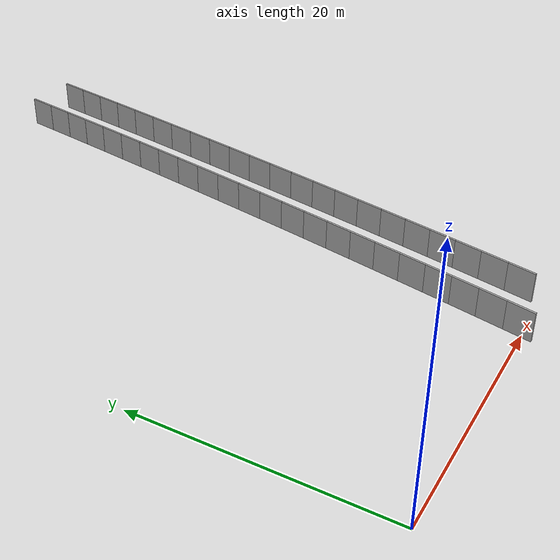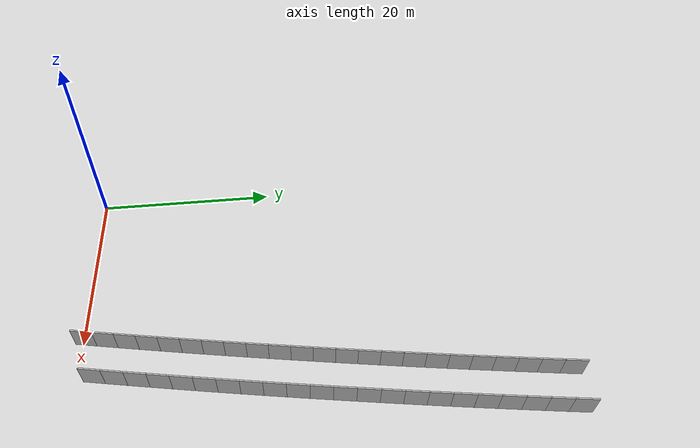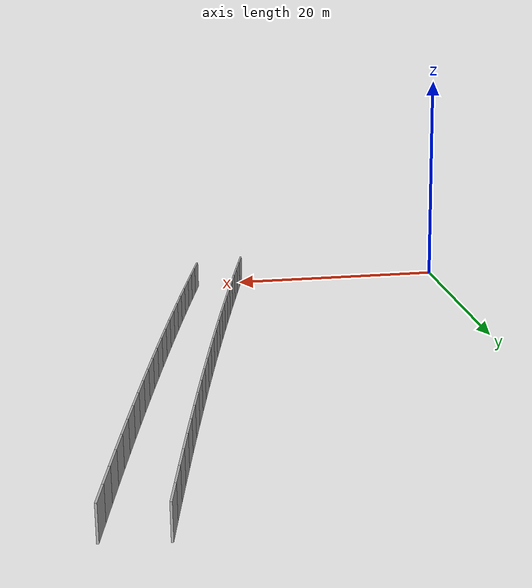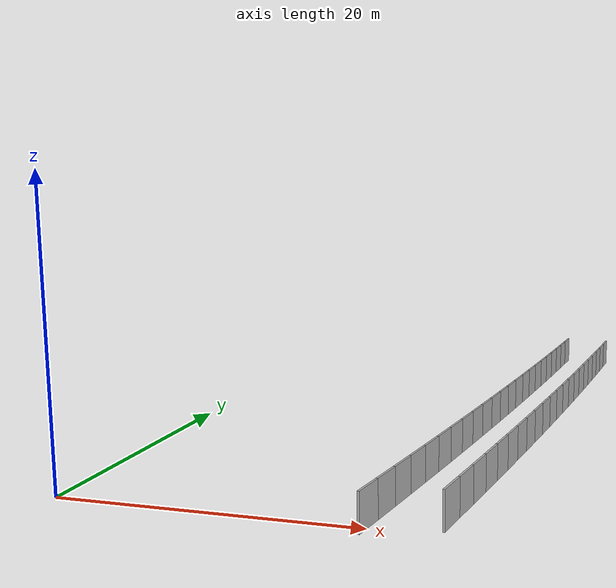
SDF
<?xml version="1.0" ?>
<sdf version="1.6">
  <model name="sps_4621">
    <pose frame="">0 0 0 0 -0 0</pose>
    <static>1</static>
    <self_collide>0</self_collide>
    <allow_auto_disable>0</allow_auto_disable>
    <link name="Wall4465">
      <kinematic>0</kinematic>
      <gravity>1</gravity>
      <self_collide>0</self_collide>
      <collision name="collision">
        <geometry>
          <box>
            <size>2.25437 0.15 2.5</size>
          </box>
        </geometry>
        <pose frame="">0 0 0 0 -0 0</pose>
      </collision>
      <visual name="visual">
        <geometry>
          <box>
            <size>2.25437 0.15 2.5</size>
          </box>
        </geometry>
        <pose frame="">0 0 0 0 -0 0</pose>
        <cast_shadows>1</cast_shadows>
        <transparency>0.0</transparency>
      </visual>
      <pose frame="">24.4517 1.71648 1.25 0 -0 1.37571</pose>
    </link>
    <link name="Wall4466">
      <kinematic>0</kinematic>
      <gravity>1</gravity>
      <self_collide>0</self_collide>
      <collision name="collision">
        <geometry>
          <box>
            <size>2.25475 0.15 2.5</size>
          </box>
        </geometry>
        <pose frame="">0 0 0 0 -0 0</pose>
      </collision>
      <visual name="visual">
        <geometry>
          <box>
            <size>2.25475 0.15 2.5</size>
          </box>
        </geometry>
        <pose frame="">0 0 0 0 -0 0</pose>
        <cast_shadows>1</cast_shadows>
        <transparency>0.0</transparency>
      </visual>
      <pose frame="">24.8862 3.92879 1.25 0 -0 1.37809</pose>
    </link>
    <link name="Wall4467">
      <kinematic>0</kinematic>
      <gravity>1</gravity>
      <self_collide>0</self_collide>
      <collision name="collision">
        <geometry>
          <box>
            <size>2.25467 0.15 2.5</size>
          </box>
        </geometry>
        <pose frame="">0 0 0 0 -0 0</pose>
      </collision>
      <visual name="visual">
        <geometry>
          <box>
            <size>2.25467 0.15 2.5</size>
          </box>
        </geometry>
        <pose frame="">0 0 0 0 -0 0</pose>
        <cast_shadows>1</cast_shadows>
        <transparency>0.0</transparency>
      </visual>
      <pose frame="">25.3153 6.14229 1.25 0 -0 1.38054</pose>
    </link>
    <link name="Wall4468">
      <kinematic>0</kinematic>
      <gravity>1</gravity>
      <self_collide>0</self_collide>
      <collision name="collision">
        <geometry>
          <box>
            <size>2.25451 0.15 2.5</size>
          </box>
        </geometry>
        <pose frame="">0 0 0 0 -0 0</pose>
      </collision>
      <visual name="visual">
        <geometry>
          <box>
            <size>2.25451 0.15 2.5</size>
          </box>
        </geometry>
        <pose frame="">0 0 0 0 -0 0</pose>
        <cast_shadows>1</cast_shadows>
        <transparency>0.0</transparency>
      </visual>
      <pose frame="">25.7392 8.35667 1.25 0 -0 1.38278</pose>
    </link>
    <link name="Wall4469">
      <kinematic>0</kinematic>
      <gravity>1</gravity>
      <self_collide>0</self_collide>
      <collision name="collision">
        <geometry>
          <box>
            <size>2.25502 0.15 2.5</size>
          </box>
        </geometry>
        <pose frame="">0 0 0 0 -0 0</pose>
      </collision>
      <visual name="visual">
        <geometry>
          <box>
            <size>2.25502 0.15 2.5</size>
          </box>
        </geometry>
        <pose frame="">0 0 0 0 -0 0</pose>
        <cast_shadows>1</cast_shadows>
        <transparency>0.0</transparency>
      </visual>
      <pose frame="">26.158 10.5722 1.25 0 -0 1.38508</pose>
    </link>
    <link name="Wall4470">
      <kinematic>0</kinematic>
      <gravity>1</gravity>
      <self_collide>0</self_collide>
      <collision name="collision">
        <geometry>
          <box>
            <size>2.25472 0.15 2.5</size>
          </box>
        </geometry>
        <pose frame="">0 0 0 0 -0 0</pose>
      </collision>
      <visual name="visual">
        <geometry>
          <box>
            <size>2.25472 0.15 2.5</size>
          </box>
        </geometry>
        <pose frame="">0 0 0 0 -0 0</pose>
        <cast_shadows>1</cast_shadows>
        <transparency>0.0</transparency>
      </visual>
      <pose frame="">26.5716 12.7888 1.25 0 -0 1.38757</pose>
    </link>
    <link name="Wall4471">
      <kinematic>0</kinematic>
      <gravity>1</gravity>
      <self_collide>0</self_collide>
      <collision name="collision">
        <geometry>
          <box>
            <size>2.25452 0.15 2.5</size>
          </box>
        </geometry>
        <pose frame="">0 0 0 0 -0 0</pose>
      </collision>
      <visual name="visual">
        <geometry>
          <box>
            <size>2.25452 0.15 2.5</size>
          </box>
        </geometry>
        <pose frame="">0 0 0 0 -0 0</pose>
        <cast_shadows>1</cast_shadows>
        <transparency>0.0</transparency>
      </visual>
      <pose frame="">26.9798 15.0062 1.25 0 -0 1.39</pose>
    </link>
    <link name="Wall4472">
      <kinematic>0</kinematic>
      <gravity>1</gravity>
      <self_collide>0</self_collide>
      <collision name="collision">
        <geometry>
          <box>
            <size>2.25461 0.15 2.5</size>
          </box>
        </geometry>
        <pose frame="">0 0 0 0 -0 0</pose>
      </collision>
      <visual name="visual">
        <geometry>
          <box>
            <size>2.25461 0.15 2.5</size>
          </box>
        </geometry>
        <pose frame="">0 0 0 0 -0 0</pose>
        <cast_shadows>1</cast_shadows>
        <transparency>0.0</transparency>
      </visual>
      <pose frame="">27.3826 17.2245 1.25 0 -0 1.39234</pose>
    </link>
    <link name="Wall4473">
      <kinematic>0</kinematic>
      <gravity>1</gravity>
      <self_collide>0</self_collide>
      <collision name="collision">
        <geometry>
          <box>
            <size>2.25493 0.15 2.5</size>
          </box>
        </geometry>
        <pose frame="">0 0 0 0 -0 0</pose>
      </collision>
      <visual name="visual">
        <geometry>
          <box>
            <size>2.25493 0.15 2.5</size>
          </box>
        </geometry>
        <pose frame="">0 0 0 0 -0 0</pose>
        <cast_shadows>1</cast_shadows>
        <transparency>0.0</transparency>
      </visual>
      <pose frame="">27.7803 19.4439 1.25 0 -0 1.39463</pose>
    </link>
    <link name="Wall4474">
      <kinematic>0</kinematic>
      <gravity>1</gravity>
      <self_collide>0</self_collide>
      <collision name="collision">
        <geometry>
          <box>
            <size>2.25435 0.15 2.5</size>
          </box>
        </geometry>
        <pose frame="">0 0 0 0 -0 0</pose>
      </collision>
      <visual name="visual">
        <geometry>
          <box>
            <size>2.25435 0.15 2.5</size>
          </box>
        </geometry>
        <pose frame="">0 0 0 0 -0 0</pose>
        <cast_shadows>1</cast_shadows>
        <transparency>0.0</transparency>
      </visual>
      <pose frame="">28.1728 21.6641 1.25 0 -0 1.39703</pose>
    </link>
    <link name="Wall4475">
      <kinematic>0</kinematic>
      <gravity>1</gravity>
      <self_collide>0</self_collide>
      <collision name="collision">
        <geometry>
          <box>
            <size>2.25454 0.15 2.5</size>
          </box>
        </geometry>
        <pose frame="">0 0 0 0 -0 0</pose>
      </collision>
      <visual name="visual">
        <geometry>
          <box>
            <size>2.25454 0.15 2.5</size>
          </box>
        </geometry>
        <pose frame="">0 0 0 0 -0 0</pose>
        <cast_shadows>1</cast_shadows>
        <transparency>0.0</transparency>
      </visual>
      <pose frame="">28.5597 23.8851 1.25 0 -0 1.39954</pose>
    </link>
    <link name="Wall4476">
      <kinematic>0</kinematic>
      <gravity>1</gravity>
      <self_collide>0</self_collide>
      <collision name="collision">
        <geometry>
          <box>
            <size>2.25477 0.15 2.5</size>
          </box>
        </geometry>
        <pose frame="">0 0 0 0 -0 0</pose>
      </collision>
      <visual name="visual">
        <geometry>
          <box>
            <size>2.25477 0.15 2.5</size>
          </box>
        </geometry>
        <pose frame="">0 0 0 0 -0 0</pose>
        <cast_shadows>1</cast_shadows>
        <transparency>0.0</transparency>
      </visual>
      <pose frame="">28.9415 26.1072 1.25 0 -0 1.40181</pose>
    </link>
    <link name="Wall4477">
      <kinematic>0</kinematic>
      <gravity>1</gravity>
      <self_collide>0</self_collide>
      <collision name="collision">
        <geometry>
          <box>
            <size>2.25459 0.15 2.5</size>
          </box>
        </geometry>
        <pose frame="">0 0 0 0 -0 0</pose>
      </collision>
      <visual name="visual">
        <geometry>
          <box>
            <size>2.25459 0.15 2.5</size>
          </box>
        </geometry>
        <pose frame="">0 0 0 0 -0 0</pose>
        <cast_shadows>1</cast_shadows>
        <transparency>0.0</transparency>
      </visual>
      <pose frame="">29.318 28.3302 1.25 0 -0 1.40424</pose>
    </link>
    <link name="Wall4478">
      <kinematic>0</kinematic>
      <gravity>1</gravity>
      <self_collide>0</self_collide>
      <collision name="collision">
        <geometry>
          <box>
            <size>2.2547 0.15 2.5</size>
          </box>
        </geometry>
        <pose frame="">0 0 0 0 -0 0</pose>
      </collision>
      <visual name="visual">
        <geometry>
          <box>
            <size>2.2547 0.15 2.5</size>
          </box>
        </geometry>
        <pose frame="">0 0 0 0 -0 0</pose>
        <cast_shadows>1</cast_shadows>
        <transparency>0.0</transparency>
      </visual>
      <pose frame="">29.6891 30.5541 1.25 0 -0 1.40658</pose>
    </link>
    <link name="Wall4479">
      <kinematic>0</kinematic>
      <gravity>1</gravity>
      <self_collide>0</self_collide>
      <collision name="collision">
        <geometry>
          <box>
            <size>2.2547 0.15 2.5</size>
          </box>
        </geometry>
        <pose frame="">0 0 0 0 -0 0</pose>
      </collision>
      <visual name="visual">
        <geometry>
          <box>
            <size>2.2547 0.15 2.5</size>
          </box>
        </geometry>
        <pose frame="">0 0 0 0 -0 0</pose>
        <cast_shadows>1</cast_shadows>
        <transparency>0.0</transparency>
      </visual>
      <pose frame="">30.0551 32.7789 1.25 0 -0 1.40891</pose>
    </link>
    <link name="Wall4480">
      <kinematic>0</kinematic>
      <gravity>1</gravity>
      <self_collide>0</self_collide>
      <collision name="collision">
        <geometry>
          <box>
            <size>2.25458 0.15 2.5</size>
          </box>
        </geometry>
        <pose frame="">0 0 0 0 -0 0</pose>
      </collision>
      <visual name="visual">
        <geometry>
          <box>
            <size>2.25458 0.15 2.5</size>
          </box>
        </geometry>
        <pose frame="">0 0 0 0 -0 0</pose>
        <cast_shadows>1</cast_shadows>
        <transparency>0.0</transparency>
      </visual>
      <pose frame="">30.4157 35.0045 1.25 0 -0 1.41143</pose>
    </link>
    <link name="Wall4481">
      <kinematic>0</kinematic>
      <gravity>1</gravity>
      <self_collide>0</self_collide>
      <collision name="collision">
        <geometry>
          <box>
            <size>2.25459 0.15 2.5</size>
          </box>
        </geometry>
        <pose frame="">0 0 0 0 -0 0</pose>
      </collision>
      <visual name="visual">
        <geometry>
          <box>
            <size>2.25459 0.15 2.5</size>
          </box>
        </geometry>
        <pose frame="">0 0 0 0 -0 0</pose>
        <cast_shadows>1</cast_shadows>
        <transparency>0.0</transparency>
      </visual>
      <pose frame="">30.771 37.2309 1.25 0 -0 1.41365</pose>
    </link>
    <link name="Wall4482">
      <kinematic>0</kinematic>
      <gravity>1</gravity>
      <self_collide>0</self_collide>
      <collision name="collision">
        <geometry>
          <box>
            <size>2.25453 0.15 2.5</size>
          </box>
        </geometry>
        <pose frame="">0 0 0 0 -0 0</pose>
      </collision>
      <visual name="visual">
        <geometry>
          <box>
            <size>2.25453 0.15 2.5</size>
          </box>
        </geometry>
        <pose frame="">0 0 0 0 -0 0</pose>
        <cast_shadows>1</cast_shadows>
        <transparency>0.0</transparency>
      </visual>
      <pose frame="">31.1212 39.4581 1.25 0 -0 1.41608</pose>
    </link>
    <link name="Wall4483">
      <kinematic>0</kinematic>
      <gravity>1</gravity>
      <self_collide>0</self_collide>
      <collision name="collision">
        <geometry>
          <box>
            <size>2.25487 0.15 2.5</size>
          </box>
        </geometry>
        <pose frame="">0 0 0 0 -0 0</pose>
      </collision>
      <visual name="visual">
        <geometry>
          <box>
            <size>2.25487 0.15 2.5</size>
          </box>
        </geometry>
        <pose frame="">0 0 0 0 -0 0</pose>
        <cast_shadows>1</cast_shadows>
        <transparency>0.0</transparency>
      </visual>
      <pose frame="">31.466 41.6863 1.25 0 -0 1.41846</pose>
    </link>
    <link name="Wall4484">
      <kinematic>0</kinematic>
      <gravity>1</gravity>
      <self_collide>0</self_collide>
      <collision name="collision">
        <geometry>
          <box>
            <size>2.25455 0.15 2.5</size>
          </box>
        </geometry>
        <pose frame="">0 0 0 0 -0 0</pose>
      </collision>
      <visual name="visual">
        <geometry>
          <box>
            <size>2.25455 0.15 2.5</size>
          </box>
        </geometry>
        <pose frame="">0 0 0 0 -0 0</pose>
        <cast_shadows>1</cast_shadows>
        <transparency>0.0</transparency>
      </visual>
      <pose frame="">31.8054 43.9153 1.25 0 -0 1.42085</pose>
    </link>
    <link name="Wall4485">
      <kinematic>0</kinematic>
      <gravity>1</gravity>
      <self_collide>0</self_collide>
      <collision name="collision">
        <geometry>
          <box>
            <size>2.25447 0.15 2.5</size>
          </box>
        </geometry>
        <pose frame="">0 0 0 0 -0 0</pose>
      </collision>
      <visual name="visual">
        <geometry>
          <box>
            <size>2.25447 0.15 2.5</size>
          </box>
        </geometry>
        <pose frame="">0 0 0 0 -0 0</pose>
        <cast_shadows>1</cast_shadows>
        <transparency>0.0</transparency>
      </visual>
      <pose frame="">32.1395 46.1449 1.25 0 -0 1.42326</pose>
    </link>
    <link name="Wall4486">
      <kinematic>0</kinematic>
      <gravity>1</gravity>
      <self_collide>0</self_collide>
      <collision name="collision">
        <geometry>
          <box>
            <size>2.25473 0.15 2.5</size>
          </box>
        </geometry>
        <pose frame="">0 0 0 0 -0 0</pose>
      </collision>
      <visual name="visual">
        <geometry>
          <box>
            <size>2.25473 0.15 2.5</size>
          </box>
        </geometry>
        <pose frame="">0 0 0 0 -0 0</pose>
        <cast_shadows>1</cast_shadows>
        <transparency>0.0</transparency>
      </visual>
      <pose frame="">32.4683 48.3754 1.25 0 -0 1.42563</pose>
    </link>
    <link name="Wall6189">
      <kinematic>0</kinematic>
      <gravity>1</gravity>
      <self_collide>0</self_collide>
      <collision name="collision">
        <geometry>
          <box>
            <size>2.24485 0.15 2.5</size>
          </box>
        </geometry>
        <pose frame="">0 0 0 0 -0 0</pose>
      </collision>
      <visual name="visual">
        <geometry>
          <box>
            <size>2.24485 0.15 2.5</size>
          </box>
        </geometry>
        <pose frame="">0 0 0 0 -0 0</pose>
        <cast_shadows>1</cast_shadows>
        <transparency>0.0</transparency>
      </visual>
      <pose frame="">19.9531 0.317489 1.25 0 -0 1.37335</pose>
    </link>
    <link name="Wall6190">
      <kinematic>0</kinematic>
      <gravity>1</gravity>
      <self_collide>0</self_collide>
      <collision name="collision">
        <geometry>
          <box>
            <size>2.24452 0.15 2.5</size>
          </box>
        </geometry>
        <pose frame="">0 0 0 0 -0 0</pose>
      </collision>
      <visual name="visual">
        <geometry>
          <box>
            <size>2.24452 0.15 2.5</size>
          </box>
        </geometry>
        <pose frame="">0 0 0 0 -0 0</pose>
        <cast_shadows>1</cast_shadows>
        <transparency>0.0</transparency>
      </visual>
      <pose frame="">20.3907 2.51909 1.25 0 -0 1.37576</pose>
    </link>
    <link name="Wall6191">
      <kinematic>0</kinematic>
      <gravity>1</gravity>
      <self_collide>0</self_collide>
      <collision name="collision">
        <geometry>
          <box>
            <size>2.24481 0.15 2.5</size>
          </box>
        </geometry>
        <pose frame="">0 0 0 0 -0 0</pose>
      </collision>
      <visual name="visual">
        <geometry>
          <box>
            <size>2.24481 0.15 2.5</size>
          </box>
        </geometry>
        <pose frame="">0 0 0 0 -0 0</pose>
        <cast_shadows>1</cast_shadows>
        <transparency>0.0</transparency>
      </visual>
      <pose frame="">20.8232 4.72169 1.25 0 -0 1.37806</pose>
    </link>
    <link name="Wall6192">
      <kinematic>0</kinematic>
      <gravity>1</gravity>
      <self_collide>0</self_collide>
      <collision name="collision">
        <geometry>
          <box>
            <size>2.24491 0.15 2.5</size>
          </box>
        </geometry>
        <pose frame="">0 0 0 0 -0 0</pose>
      </collision>
      <visual name="visual">
        <geometry>
          <box>
            <size>2.24491 0.15 2.5</size>
          </box>
        </geometry>
        <pose frame="">0 0 0 0 -0 0</pose>
        <cast_shadows>1</cast_shadows>
        <transparency>0.0</transparency>
      </visual>
      <pose frame="">21.2506 6.92549 1.25 0 -0 1.38042</pose>
    </link>
    <link name="Wall6193">
      <kinematic>0</kinematic>
      <gravity>1</gravity>
      <self_collide>0</self_collide>
      <collision name="collision">
        <geometry>
          <box>
            <size>2.24477 0.15 2.5</size>
          </box>
        </geometry>
        <pose frame="">0 0 0 0 -0 0</pose>
      </collision>
      <visual name="visual">
        <geometry>
          <box>
            <size>2.24477 0.15 2.5</size>
          </box>
        </geometry>
        <pose frame="">0 0 0 0 -0 0</pose>
        <cast_shadows>1</cast_shadows>
        <transparency>0.0</transparency>
      </visual>
      <pose frame="">21.6728 9.13026 1.25 0 -0 1.38276</pose>
    </link>
    <link name="Wall6194">
      <kinematic>0</kinematic>
      <gravity>1</gravity>
      <self_collide>0</self_collide>
      <collision name="collision">
        <geometry>
          <box>
            <size>2.24475 0.15 2.5</size>
          </box>
        </geometry>
        <pose frame="">0 0 0 0 -0 0</pose>
      </collision>
      <visual name="visual">
        <geometry>
          <box>
            <size>2.24475 0.15 2.5</size>
          </box>
        </geometry>
        <pose frame="">0 0 0 0 -0 0</pose>
        <cast_shadows>1</cast_shadows>
        <transparency>0.0</transparency>
      </visual>
      <pose frame="">22.0897 11.336 1.25 0 -0 1.3853</pose>
    </link>
    <link name="Wall6195">
      <kinematic>0</kinematic>
      <gravity>1</gravity>
      <self_collide>0</self_collide>
      <collision name="collision">
        <geometry>
          <box>
            <size>2.24482 0.15 2.5</size>
          </box>
        </geometry>
        <pose frame="">0 0 0 0 -0 0</pose>
      </collision>
      <visual name="visual">
        <geometry>
          <box>
            <size>2.24482 0.15 2.5</size>
          </box>
        </geometry>
        <pose frame="">0 0 0 0 -0 0</pose>
        <cast_shadows>1</cast_shadows>
        <transparency>0.0</transparency>
      </visual>
      <pose frame="">22.5012 13.5427 1.25 0 -0 1.38749</pose>
    </link>
    <link name="Wall6196">
      <kinematic>0</kinematic>
      <gravity>1</gravity>
      <self_collide>0</self_collide>
      <collision name="collision">
        <geometry>
          <box>
            <size>2.24496 0.15 2.5</size>
          </box>
        </geometry>
        <pose frame="">0 0 0 0 -0 0</pose>
      </collision>
      <visual name="visual">
        <geometry>
          <box>
            <size>2.24496 0.15 2.5</size>
          </box>
        </geometry>
        <pose frame="">0 0 0 0 -0 0</pose>
        <cast_shadows>1</cast_shadows>
        <transparency>0.0</transparency>
      </visual>
      <pose frame="">22.9076 15.7505 1.25 0 -0 1.39002</pose>
    </link>
    <link name="Wall6197">
      <kinematic>0</kinematic>
      <gravity>1</gravity>
      <self_collide>0</self_collide>
      <collision name="collision">
        <geometry>
          <box>
            <size>2.24462 0.15 2.5</size>
          </box>
        </geometry>
        <pose frame="">0 0 0 0 -0 0</pose>
      </collision>
      <visual name="visual">
        <geometry>
          <box>
            <size>2.24462 0.15 2.5</size>
          </box>
        </geometry>
        <pose frame="">0 0 0 0 -0 0</pose>
        <cast_shadows>1</cast_shadows>
        <transparency>0.0</transparency>
      </visual>
      <pose frame="">23.3086 17.9592 1.25 0 -0 1.39237</pose>
    </link>
    <link name="Wall6198">
      <kinematic>0</kinematic>
      <gravity>1</gravity>
      <self_collide>0</self_collide>
      <collision name="collision">
        <geometry>
          <box>
            <size>2.24477 0.15 2.5</size>
          </box>
        </geometry>
        <pose frame="">0 0 0 0 -0 0</pose>
      </collision>
      <visual name="visual">
        <geometry>
          <box>
            <size>2.24477 0.15 2.5</size>
          </box>
        </geometry>
        <pose frame="">0 0 0 0 -0 0</pose>
        <cast_shadows>1</cast_shadows>
        <transparency>0.0</transparency>
      </visual>
      <pose frame="">23.7046 20.1687 1.25 0 -0 1.39462</pose>
    </link>
    <link name="Wall6199">
      <kinematic>0</kinematic>
      <gravity>1</gravity>
      <self_collide>0</self_collide>
      <collision name="collision">
        <geometry>
          <box>
            <size>2.24497 0.15 2.5</size>
          </box>
        </geometry>
        <pose frame="">0 0 0 0 -0 0</pose>
      </collision>
      <visual name="visual">
        <geometry>
          <box>
            <size>2.24497 0.15 2.5</size>
          </box>
        </geometry>
        <pose frame="">0 0 0 0 -0 0</pose>
        <cast_shadows>1</cast_shadows>
        <transparency>0.0</transparency>
      </visual>
      <pose frame="">24.0953 22.3793 1.25 0 -0 1.39709</pose>
    </link>
    <link name="Wall6200">
      <kinematic>0</kinematic>
      <gravity>1</gravity>
      <self_collide>0</self_collide>
      <collision name="collision">
        <geometry>
          <box>
            <size>2.24463 0.15 2.5</size>
          </box>
        </geometry>
        <pose frame="">0 0 0 0 -0 0</pose>
      </collision>
      <visual name="visual">
        <geometry>
          <box>
            <size>2.24463 0.15 2.5</size>
          </box>
        </geometry>
        <pose frame="">0 0 0 0 -0 0</pose>
        <cast_shadows>1</cast_shadows>
        <transparency>0.0</transparency>
      </visual>
      <pose frame="">24.4806 24.5908 1.25 0 -0 1.39952</pose>
    </link>
    <link name="Wall6201">
      <kinematic>0</kinematic>
      <gravity>1</gravity>
      <self_collide>0</self_collide>
      <collision name="collision">
        <geometry>
          <box>
            <size>2.24485 0.15 2.5</size>
          </box>
        </geometry>
        <pose frame="">0 0 0 0 -0 0</pose>
      </collision>
      <visual name="visual">
        <geometry>
          <box>
            <size>2.24485 0.15 2.5</size>
          </box>
        </geometry>
        <pose frame="">0 0 0 0 -0 0</pose>
        <cast_shadows>1</cast_shadows>
        <transparency>0.0</transparency>
      </visual>
      <pose frame="">24.8607 26.8031 1.25 0 -0 1.40169</pose>
    </link>
    <link name="Wall6202">
      <kinematic>0</kinematic>
      <gravity>1</gravity>
      <self_collide>0</self_collide>
      <collision name="collision">
        <geometry>
          <box>
            <size>2.24469 0.15 2.5</size>
          </box>
        </geometry>
        <pose frame="">0 0 0 0 -0 0</pose>
      </collision>
      <visual name="visual">
        <geometry>
          <box>
            <size>2.24469 0.15 2.5</size>
          </box>
        </geometry>
        <pose frame="">0 0 0 0 -0 0</pose>
        <cast_shadows>1</cast_shadows>
        <transparency>0.0</transparency>
      </visual>
      <pose frame="">25.2357 29.0163 1.25 0 -0 1.40422</pose>
    </link>
    <link name="Wall6203">
      <kinematic>0</kinematic>
      <gravity>1</gravity>
      <self_collide>0</self_collide>
      <collision name="collision">
        <geometry>
          <box>
            <size>2.24477 0.15 2.5</size>
          </box>
        </geometry>
        <pose frame="">0 0 0 0 -0 0</pose>
      </collision>
      <visual name="visual">
        <geometry>
          <box>
            <size>2.24477 0.15 2.5</size>
          </box>
        </geometry>
        <pose frame="">0 0 0 0 -0 0</pose>
        <cast_shadows>1</cast_shadows>
        <transparency>0.0</transparency>
      </visual>
      <pose frame="">25.6052 31.2304 1.25 0 -0 1.40665</pose>
    </link>
    <link name="Wall6204">
      <kinematic>0</kinematic>
      <gravity>1</gravity>
      <self_collide>0</self_collide>
      <collision name="collision">
        <geometry>
          <box>
            <size>2.24489 0.15 2.5</size>
          </box>
        </geometry>
        <pose frame="">0 0 0 0 -0 0</pose>
      </collision>
      <visual name="visual">
        <geometry>
          <box>
            <size>2.24489 0.15 2.5</size>
          </box>
        </geometry>
        <pose frame="">0 0 0 0 -0 0</pose>
        <cast_shadows>1</cast_shadows>
        <transparency>0.0</transparency>
      </visual>
      <pose frame="">25.9694 33.4455 1.25 0 -0 1.40903</pose>
    </link>
    <link name="Wall6205">
      <kinematic>0</kinematic>
      <gravity>1</gravity>
      <self_collide>0</self_collide>
      <collision name="collision">
        <geometry>
          <box>
            <size>2.24485 0.15 2.5</size>
          </box>
        </geometry>
        <pose frame="">0 0 0 0 -0 0</pose>
      </collision>
      <visual name="visual">
        <geometry>
          <box>
            <size>2.24485 0.15 2.5</size>
          </box>
        </geometry>
        <pose frame="">0 0 0 0 -0 0</pose>
        <cast_shadows>1</cast_shadows>
        <transparency>0.0</transparency>
      </visual>
      <pose frame="">26.3285 35.6615 1.25 0 -0 1.41134</pose>
    </link>
    <link name="Wall6206">
      <kinematic>0</kinematic>
      <gravity>1</gravity>
      <self_collide>0</self_collide>
      <collision name="collision">
        <geometry>
          <box>
            <size>2.24514 0.15 2.5</size>
          </box>
        </geometry>
        <pose frame="">0 0 0 0 -0 0</pose>
      </collision>
      <visual name="visual">
        <geometry>
          <box>
            <size>2.24514 0.15 2.5</size>
          </box>
        </geometry>
        <pose frame="">0 0 0 0 -0 0</pose>
        <cast_shadows>1</cast_shadows>
        <transparency>0.0</transparency>
      </visual>
      <pose frame="">26.6826 37.8784 1.25 0 -0 1.41345</pose>
    </link>
    <link name="Wall6207">
      <kinematic>0</kinematic>
      <gravity>1</gravity>
      <self_collide>0</self_collide>
      <collision name="collision">
        <geometry>
          <box>
            <size>2.24481 0.15 2.5</size>
          </box>
        </geometry>
        <pose frame="">0 0 0 0 -0 0</pose>
      </collision>
      <visual name="visual">
        <geometry>
          <box>
            <size>2.24481 0.15 2.5</size>
          </box>
        </geometry>
        <pose frame="">0 0 0 0 -0 0</pose>
        <cast_shadows>1</cast_shadows>
        <transparency>0.0</transparency>
      </visual>
      <pose frame="">27.0314 40.0961 1.25 0 -0 1.41615</pose>
    </link>
    <link name="Wall6208">
      <kinematic>0</kinematic>
      <gravity>1</gravity>
      <self_collide>0</self_collide>
      <collision name="collision">
        <geometry>
          <box>
            <size>2.24477 0.15 2.5</size>
          </box>
        </geometry>
        <pose frame="">0 0 0 0 -0 0</pose>
      </collision>
      <visual name="visual">
        <geometry>
          <box>
            <size>2.24477 0.15 2.5</size>
          </box>
        </geometry>
        <pose frame="">0 0 0 0 -0 0</pose>
        <cast_shadows>1</cast_shadows>
        <transparency>0.0</transparency>
      </visual>
      <pose frame="">27.3744 42.3145 1.25 0 -0 1.41857</pose>
    </link>
    <link name="Wall6209">
      <kinematic>0</kinematic>
      <gravity>1</gravity>
      <self_collide>0</self_collide>
      <collision name="collision">
        <geometry>
          <box>
            <size>2.24484 0.15 2.5</size>
          </box>
        </geometry>
        <pose frame="">0 0 0 0 -0 0</pose>
      </collision>
      <visual name="visual">
        <geometry>
          <box>
            <size>2.24484 0.15 2.5</size>
          </box>
        </geometry>
        <pose frame="">0 0 0 0 -0 0</pose>
        <cast_shadows>1</cast_shadows>
        <transparency>0.0</transparency>
      </visual>
      <pose frame="">27.7125 44.5337 1.25 0 -0 1.42072</pose>
    </link>
    <link name="Wall6210">
      <kinematic>0</kinematic>
      <gravity>1</gravity>
      <self_collide>0</self_collide>
      <collision name="collision">
        <geometry>
          <box>
            <size>2.24475 0.15 2.5</size>
          </box>
        </geometry>
        <pose frame="">0 0 0 0 -0 0</pose>
      </collision>
      <visual name="visual">
        <geometry>
          <box>
            <size>2.24475 0.15 2.5</size>
          </box>
        </geometry>
        <pose frame="">0 0 0 0 -0 0</pose>
        <cast_shadows>1</cast_shadows>
        <transparency>0.0</transparency>
      </visual>
      <pose frame="">28.0452 46.7537 1.25 0 -0 1.42335</pose>
    </link>
    <link name="Wall6211">
      <kinematic>0</kinematic>
      <gravity>1</gravity>
      <self_collide>0</self_collide>
      <collision name="collision">
        <geometry>
          <box>
            <size>2.24466 0.15 2.5</size>
          </box>
        </geometry>
        <pose frame="">0 0 0 0 -0 0</pose>
      </collision>
      <visual name="visual">
        <geometry>
          <box>
            <size>2.24466 0.15 2.5</size>
          </box>
        </geometry>
        <pose frame="">0 0 0 0 -0 0</pose>
        <cast_shadows>1</cast_shadows>
        <transparency>0.0</transparency>
      </visual>
      <pose frame="">28.3726 48.9744 1.25 0 -0 1.42549</pose>
    </link>
  </model>
</sdf>
